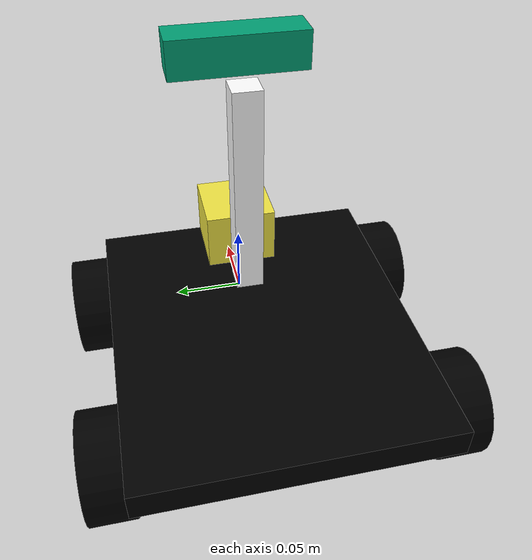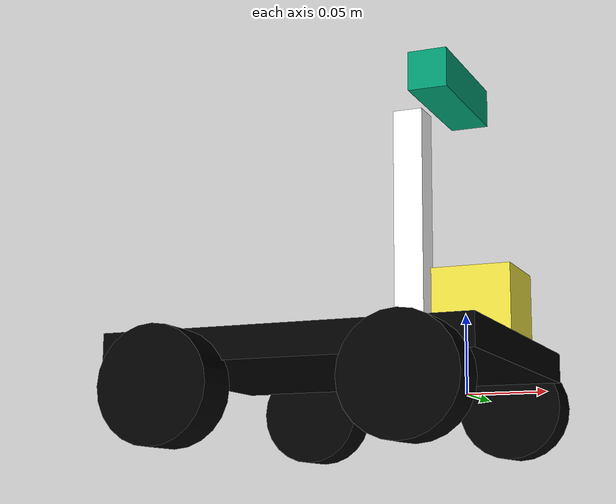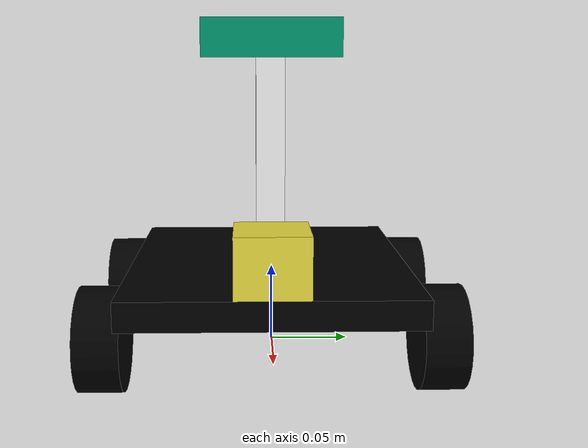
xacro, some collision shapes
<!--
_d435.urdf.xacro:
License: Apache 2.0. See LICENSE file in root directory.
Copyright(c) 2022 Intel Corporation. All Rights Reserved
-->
<?xml version="1.0"?>
<!-- Traxter Robot -->
    <robot name="traxter" xmlns:xacro="http://www.ros.org/wiki/xacro" canonical_link='base_link'>
<!-- CONSTANTS -->

    <!-- Constants for robot dimensions -->
    <xacro:property name="PI" value="3.1415926535897931" />
    <xacro:property name="wheel_base" value="0.225" />
    <xacro:property name="wheel_longitudinal_dist" value="0.15" /> <!-- Distance between rear and front wheels in x-direction-->
    <xacro:property name="camera_height" value="0.15" />
    <xacro:property name="scanner_height" value="0.05315" />
     <xacro:property name="imu_height" value="0.033" />

    <!-- Chassis Constants -->
    <xacro:property name="chassis_mass" value="1.5" />
    <xacro:property name="chassis_width" value="0.202" />
    <xacro:property name="chassis_length" value="0.235" />
    <xacro:property name="chassis_height" value="0.02" />
    <!-- Wheels Constants -->
    <xacro:property name="wheel_mass" value="1" />
    <xacro:property name="wheel_width" value="0.03" />
    <xacro:property name="wheel_radius" value="0.0355" />

<!-- INCLUDES-->
    <xacro:include filename="colours.xacro" /> <!-- rviz colours-->
    <xacro:include filename="inertial_macros.xacro" /> <!-- basic inertia math-->
    <xacro:include filename="$(find traxter_description)/urdf/_d435.urdf.xacro" />

  <!-- FOR REALSENSE DESCRIPTION -->
  <xacro:arg name="use_nominal_extrinsics" default="true"/>
  <xacro:arg name="add_plug" default="false" />
  <xacro:arg name="use_mesh" default="true" />

<!-- LINKS and JOINTS -->

    <link name="base_link"></link>

    <joint name="base_footprint_joint" type="fixed">
        <parent link="base_link"/>
        <child link="base_footprint"/>
        <origin xyz="0 0 -${wheel_radius}"/>
    </joint>

    <link name="base_footprint"></link>

    <!-- CHASSIS -->
    <joint name="chassis_joint" type="fixed">
        <parent link="base_link"/>
        <child link="chassis"/>
        <origin xyz="-${chassis_length * 0.5 - wheel_radius} 0 ${wheel_radius - chassis_height* 0.5}"/>
    </joint>

    <link name="chassis">
        <visual>
            <origin xyz="0 0 0" rpy="0 0 0"/>
            <geometry>
                    <box size="${chassis_length} ${chassis_width} ${chassis_height}"/>
            </geometry>
            <material name="black"/>
        </visual>
        <collision>
            <origin xyz="0 0 0" rpy="0 0 0"/>
            <geometry>
                <box size="${chassis_length} ${chassis_width} ${chassis_height}"/>
            </geometry>
        </collision>
        <xacro:inertial_box mass="${chassis_mass}" x="${chassis_length}" y="${chassis_width}" z="${chassis_height}">
            <origin xyz="0 0 0" rpy="0 0 0"/>
        </xacro:inertial_box>
    </link>

    <!-- WHEELS -->
    <joint name="front_left_wheel_joint" type="revolute">
        <parent link="chassis"/>
        <child link="front_left_wheel"/>
        <origin xyz="${chassis_length* 0.5 - wheel_radius} ${wheel_base* 0.5} ${-wheel_radius + chassis_height* 0.5}" rpy="0 0 0"/>
        <axis xyz="0 1 0"/>
        <limit lower="-1e16" upper="1e16" effort="100000.0" velocity="23"/>
        <dynamics damping="0.1"/>
    </joint>

    <link name="front_left_wheel">
        <visual>
            <origin xyz="0 0 0" rpy="${PI* 0.5} 0 0"/>
            <geometry>
                    <cylinder radius="${wheel_radius}" length="${wheel_width}"/>
            </geometry>
            <material name="black"/>
        </visual>
        <collision>
            <origin xyz="0 0 0" rpy="${PI* 0.5} 0 0"/>
            <geometry>
                <cylinder radius="${wheel_radius}" length="${wheel_width}"/>
            </geometry>
            <surface>
                <contact>
                    <ode>
                        <kp>100.0</kp>
                        <kd>1.0</kd>
                    </ode>
                </contact>
            <friction>
                    <ode>
                        <mu>10</mu>
                        <mu2>1</mu2>
                        <slip1>0.01</slip1>
                        <slip2>0.2</slip2>
                        <fdir1>0 0 1</fdir1>
                    </ode>
                </friction>
            </surface>
        </collision>
        <xacro:inertial_cylinder mass="${wheel_mass}" length="${wheel_width}" radius="${wheel_radius}">
            <origin xyz="0 0 0" rpy="0 0 0"/>
        </xacro:inertial_cylinder>
    </link>

    <joint name="front_right_wheel_joint" type="revolute">
        <parent link="chassis"/>
        <child link="front_right_wheel"/>
        <origin xyz="${chassis_length* 0.5 - wheel_radius} ${-wheel_base* 0.5} ${-wheel_radius + chassis_height* 0.5}" rpy="0 0 0"/>
        <axis xyz="0 1 0"/>
        <limit lower="-1e16" upper="1e16" effort="100000.0" velocity="23"/>
        <dynamics damping="0.1"/>
    </joint>

    <link name="front_right_wheel">
        <visual>
            <origin xyz="0 0 0" rpy="${PI* 0.5} 0 0"/>
            <geometry>
                    <cylinder radius="${wheel_radius}" length="${wheel_width}"/>
            </geometry>
            <material name="black"/>
        </visual>
        <collision>
            <origin xyz="0 0 0" rpy="${PI* 0.5} 0 0"/>
            <geometry>
                <cylinder radius="${wheel_radius}" length="${wheel_width}"/>
            </geometry>
            <surface>
                <contact>
                    <ode>
                        <kp>100.0</kp>
                        <kd>1.0</kd>
                    </ode>
                </contact>
            <friction>
                    <ode>
                        <mu>10</mu>
                        <mu2>1</mu2>
                        <slip1>0.01</slip1>
                        <slip2>0.2</slip2>
                        <fdir1>0 0 1</fdir1>

                    </ode>
                </friction>
            </surface>
        </collision>
        <xacro:inertial_cylinder mass="${wheel_mass}" length="${wheel_width}" radius="${wheel_radius}">
            <origin xyz="0 0 0" rpy="0 0 0"/>
        </xacro:inertial_cylinder>
    </link>

    <joint name="rear_left_wheel_joint" type="revolute">
        <parent link="chassis"/>
        <child link="rear_left_wheel"/>
        <origin xyz="${chassis_length* 0.5 - wheel_radius-wheel_longitudinal_dist} ${wheel_base* 0.5} ${-wheel_radius + chassis_height* 0.5}" rpy="0 0 0"/>
        <axis xyz="0 1 0"/>
        <limit lower="-1e16" upper="1e16" effort="100000.0" velocity="23"/>
        <dynamics damping="0.1"/>
    </joint>

    <link name="rear_left_wheel">
        <visual>
            <origin xyz="0 0 0" rpy="${PI* 0.5} 0 0"/>
            <geometry>
                    <cylinder radius="${wheel_radius}" length="${wheel_width}"/>
            </geometry>
            <material name="black"/>
        </visual>
        <collision>
            <origin xyz="0 0 0" rpy="${PI* 0.5} 0 0"/>
            <geometry>
                <cylinder radius="${wheel_radius}" length="${wheel_width}"/>
            </geometry>
            <surface>
                <contact>
                    <ode>
                        <kp>100.0</kp>
                        <kd>1.0</kd>
                    </ode>
                </contact>
            <friction>
                    <ode>
                        <mu>10</mu>
                        <mu2>1</mu2>
                        <slip1>0.01</slip1>
                        <slip2>0.2</slip2>
                        <fdir1>0 0 1</fdir1>

                    </ode>
                </friction>
            </surface>
        </collision>
        <xacro:inertial_cylinder mass="${wheel_mass}" length="${wheel_width}" radius="${wheel_radius}">
            <origin xyz="0 0 0" rpy="0 0 0"/>
        </xacro:inertial_cylinder>
    </link>

    <joint name="rear_right_wheel_joint" type="revolute">
        <parent link="chassis"/>
        <child link="rear_right_wheel"/>
        <origin xyz="${chassis_length* 0.5 - wheel_radius-wheel_longitudinal_dist} ${-wheel_base* 0.5} ${-wheel_radius + chassis_height* 0.5}" rpy="0 0 0"/>
        <axis xyz="0 1 0"/>
        <limit lower="-1e16" upper="1e16" effort="100000.0" velocity="23"/>
        <dynamics damping="0.1"/>
    </joint>

    <link name="rear_right_wheel">
        <visual>
            <origin xyz="0 0 0" rpy="${PI* 0.5} 0 0"/>
            <geometry>
                    <cylinder radius="${wheel_radius}" length="${wheel_width}"/>
            </geometry>
            <material name="black"/>
        </visual>
        <collision>
            <origin xyz="0 0 0" rpy="${PI* 0.5} 0 0"/>
            <geometry>
                <cylinder radius="${wheel_radius}" length="${wheel_width}"/>
            </geometry>
            <surface>
                <contact>
                    <ode>
                        <kp>100.0</kp>
                        <kd>1.0</kd>
                    </ode>
                </contact>
            <friction>
                    <ode>
                        <mu>10</mu>
                        <mu2>1</mu2>
                        <slip1>0.01</slip1>
                        <slip2>0.2</slip2>
                        <fdir1>0 0 1</fdir1>

                    </ode>
                </friction>
            </surface>
        </collision>
        <xacro:inertial_cylinder mass="${wheel_mass}" length="${wheel_width}" radius="${wheel_radius}">
            <origin xyz="0 0 0" rpy="0 0 0"/>
        </xacro:inertial_cylinder>
    </link>

    <!-- CAMERA SUPPORT-->
    <joint name="camera_support_joint" type="fixed">
        <parent link="chassis"/>
        <child link="camera_support"/>
        <origin xyz="${chassis_length* 0.5-0.07} 0 ${(chassis_height+camera_height)* 0.5}" rpy="0 0 0"/>
    </joint>

    <link name="camera_support">
        <visual>
            <origin xyz="0 0 0" rpy="0 0 0"/>
            <geometry>
                    <box size="0.0195 0.0195 ${camera_height}"/>
            </geometry>
            <material name="white"/>
        </visual>
        <collision>
            <origin xyz="0 0 0" rpy="0 0 0"/>
            <geometry>
                <box size="0.0195 0.0195 ${camera_height}"/>
            </geometry>
        </collision>
        <xacro:inertial_box mass="0.3" x="0.02" y="0.02" z="${camera_height}">
            <origin xyz="0 0 0" rpy="0 0 0"/>
        </xacro:inertial_box>
    </link>

    <!-- D435 Intel RealSense -->
    <joint name="d435_joint" type="fixed">
        <parent link="camera_support"/>
        <child link="d435_link"/>
        <origin xyz="0.015 0 ${camera_height* 0.5}" rpy="0 0 0"/>
    </joint>

    <link name="d435_link">
    </link>

    <xacro:sensor_d435 parent="d435_link" use_nominal_extrinsics="$(arg use_nominal_extrinsics)" add_plug="$(arg add_plug)" use_mesh="$(arg use_mesh)">
        <origin xyz="0 0 0" rpy="0 0 0"/>
    </xacro:sensor_d435>

    <!-- HOKUYO LIDAR -->
    <joint name="lidar_joint" type="fixed">
        <parent link="chassis"/>
        <child link="hokuyo"/>
        <origin xyz="${chassis_length* 0.5-0.025} 0 ${chassis_height* 0.5+scanner_height}" rpy="0 0 0"/>
    </joint>

    <link name="hokuyo"> <!-- Values based and taken from https://fuel.gazebosim.org/1.0/mjcarroll/models/Hokuyo URG04LX -->
        <inertial>
          <mass value="0.13"/>
          <inertia ixx ="8.018737945431742e-05" ixy="0" ixz="0"
            iyy="8.018737945431742e-05" iyz="0"
            izz="5.418967911032867e-05"/>
        </inertial>
        <collision name="collision-base">
            <origin xyz="0 0 ${-scanner_height+0.041* 0.5}" rpy="0 0 0"/>
            <geometry>
              <box size="0.05 0.05 0.041"/>
            </geometry>
          </collision>
          <collision name="collision-top">
            <origin xyz="0 0 ${-scanner_height+0.041+0.0265* 0.5}" rpy="0 0 0"/>
            <geometry>
              <cylinder radius="0.021" length="0.0265"/>
            </geometry>
          </collision>
        <visual>
        <origin xyz="0 0 ${-scanner_height+0.035}" rpy="0 0 0 "/>
            <geometry>
                <mesh filename="package://traxter_description/meshes/hokuyo.dae" scale="1 1 1"/> <!-- taken form https://app.gazebosim.org/OpenRobotics/fuel/models/Hokuyo -->
            </geometry>
        </visual>
    </link>

    <!-- MPU9255 IMU -->
        <joint name="imu_joint" type="fixed">
            <parent link="chassis"/>
            <child link="imu_link"/>
            <origin xyz="${chassis_length* 0.5-0.12} 0 ${chassis_height* 0.5+imu_height}" rpy="0 0 0"/>
        </joint>

        <link name="imu_link"></link>

        <!-- Depth Camera -->
    <gazebo reference="d435_link"> <!-- values taken from https://fuel.gazebosim.org/1.0/OpenRobotics/models/Intel RealSense D435 -->
        <sensor name="rgbd_camera" type="rgbd_camera">
        <pose>0.02 0 0 0 0 0</pose>
            <always_on>1</always_on>
            <update_rate>15</update_rate>
            <camera name="camera">
              <horizontal_fov>1.0472</horizontal_fov>
              <lens>
                <intrinsics>
                  <!-- fx = fy = width / ( 2 * tan (hfov / 2 ) ) -->
                  <fx>554.25469</fx>
                  <fy>554.25469</fy>
                  <!-- cx = ( width + 1 ) / 2 -->
                  <cx>320.5</cx>
                  <!-- cy = ( height + 1 ) / 2 -->
                  <cy>240.5</cy>
                  <s>0</s>
                </intrinsics>
              </lens>
              <distortion>
                <k1>0.0</k1>
                <k2>0.0</k2>
                <k3>0.0</k3>
                <p1>0.0</p1>
                <p2>0.0</p2>
                <center>0.5 0.5</center>
              </distortion>
              <image>
                <width>640</width>
                <height>480</height>
                <format>R8G8B8</format>
              </image>
              <clip>
                <near>0.01</near>
                <far>300</far>
              </clip>
              <depth_camera>
                <clip>
                  <near>0.1</near>
                  <far>20</far>
                </clip>
                <format>R8G8B8</format>
              </depth_camera>
              <noise>
                <type>gaussian</type>
                <mean>0</mean>
                <stddev>0.007</stddev>
              </noise>
            </camera>
          </sensor>
    </gazebo>

        <gazebo>
            <plugin filename="libignition-gazebo-odometry-publisher-system.so"
                name="ignition::gazebo::systems::OdometryPublisher">
                <odom_frame>map</odom_frame>
                <robot_base_frame>base_link</robot_base_frame>
                <odom_topic>odometry/true</odom_topic>
            </plugin>
        </gazebo>

        <gazebo>
            <plugin filename="libignition-gazebo-joint-controller-system.so"
                name="ignition::gazebo::systems::JointController">
                <joint_name>front_right_wheel_joint</joint_name>
                <topic>/front_right_wheel/cmd_vel</topic>
                <initial_velocity>0</initial_velocity>
            </plugin>
        </gazebo>
        <gazebo>
            <plugin filename="libignition-gazebo-joint-controller-system.so"
                name="ignition::gazebo::systems::JointController">
                <joint_name>rear_right_wheel_joint</joint_name>
                <topic>/front_right_wheel/cmd_vel</topic>
                <initial_velocity>0</initial_velocity>
            </plugin>
        </gazebo>

        <gazebo>
            <plugin filename="libignition-gazebo-joint-controller-system.so"
                name="ignition::gazebo::systems::JointController">
                <joint_name>front_left_wheel_joint</joint_name>
                <topic>/front_left_wheel/cmd_vel</topic>
                <initial_velocity>0</initial_velocity>
            </plugin>
        </gazebo>

        <gazebo>
            <plugin filename="libignition-gazebo-joint-controller-system.so"
                name="ignition::gazebo::systems::JointController">
                <joint_name>rear_left_wheel_joint</joint_name>
                <topic>/front_left_wheel/cmd_vel</topic>
                <initial_velocity>0</initial_velocity>
            </plugin>
        </gazebo>

        <gazebo>
            <plugin name='ignition::gazebo::systems::JointStatePublisher' filename='libignition-gazebo-joint-state-publisher-system.so'>
                <joint_name>front_left_wheel_joint</joint_name>
                <joint_name>front_right_wheel_joint</joint_name>
                <joint_name>rear_left_wheel_joint</joint_name>
                <joint_name>rear_right_wheel_joint</joint_name>
            </plugin>
        </gazebo>

        <!-- GPU LiDAR -->
        <gazebo reference="hokuyo">
            <sensor name="hokuyo" type='gpu_lidar'>"
                <topic>lidar</topic>
                <update_rate>10</update_rate>
                <ray>
                    <scan>
                        <horizontal>
                            <samples>683</samples>
                            <resolution>1</resolution>
                            <min_angle>-2.09235</min_angle>
                            <max_angle>2.09235</max_angle>
                        </horizontal>
                        <vertical>
                            <samples>1</samples>
                            <resolution>0.01</resolution>
                            <min_angle>0</min_angle>
                            <max_angle>0</max_angle>
                        </vertical>
                    </scan>
                    <range>
                        <min>0.060</min>
                        <max>5.6</max>
                           <resolution>0.001</resolution>
                    </range>
                    <noise>
                        <type>gaussian</type>
                        <mean>0.0</mean>
                        <stddev>0.015</stddev>
                    </noise>
                </ray>
                <always_on>1</always_on>
                <update_rate>10</update_rate>
                <visualize>true</visualize>
            </sensor>
    </gazebo>

    <!-- IMU -->
    <gazebo reference="imu_link">
        <sensor name="imu_link" type="imu">
        <topic>imu</topic>
            <imu>
              <angular_velocity>
                <x>
                  <noise type="gaussian">
                    <mean>0.001</mean>
                    <stddev>4e-2</stddev>
                    <bias_mean>0.000075</bias_mean>
                    <bias_stddev>0.000008</bias_stddev>
                  </noise>
                </x>
                <y>
                  <noise type="gaussian">
                    <mean>0.002</mean>
                    <stddev>3e-3</stddev>
                    <bias_mean>0.0000095</bias_mean>
                    <bias_stddev>0.0000012</bias_stddev>
                  </noise>
                </y>
                <z>
                  <noise type="gaussian">
                    <mean>0.002</mean>
                    <stddev>1e-1</stddev>
                    <bias_mean>-0.0001</bias_mean>
                    <bias_stddev>0.008</bias_stddev>
                  </noise>
                </z>
              </angular_velocity>
              <linear_acceleration>
                <x>
                  <noise type="gaussian">
                    <mean>0.00012</mean>
                    <stddev>3.7e-2</stddev>
                    <bias_mean>0.001</bias_mean>
                    <bias_stddev>0.001</bias_stddev>
                  </noise>
                </x>
                <y>
                  <noise type="gaussian">
                    <mean>0.00015</mean>
                    <stddev>3.7e-2</stddev>
                    <bias_mean>0.001</bias_mean>
                    <bias_stddev>0.001</bias_stddev>
                  </noise>
                </y>
                <z>
                  <noise type="gaussian">
                    <mean>0.00012</mean>
                    <stddev>1.7e-2</stddev>
                    <bias_mean>0.001</bias_mean>
                    <bias_stddev>0.001</bias_stddev>
                  </noise>
                </z>
              </linear_acceleration>
            </imu>
            <always_on>1</always_on>
            <update_rate>50</update_rate>
          </sensor>

    </gazebo>

</robot>

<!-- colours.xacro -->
<robot xmlns:xacro="http://www.ros.org/wiki/xacro">

	<material name="white">
    		<color rgba="1 1 1 1"/>
	</material>

	<material name="orange">
    		<color rgba="1 0.3 0.1 1"/>
	</material>

	<material name="blue">
    		<color rgba="0.2 0.2 1 1"/>
	</material>

	<material name="black">
    		<color rgba="0 0 0 1"/>
	</material>

	<material name="magenta_tint">
    		<color rgba="0.6 0.5 0.5 1"/>
	</material>

</robot>

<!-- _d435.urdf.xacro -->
<robot name="sensor_d435" xmlns:xacro="http://ros.org/wiki/xacro">
  <!-- Includes -->
  <xacro:include filename="$(find traxter_description)/urdf/_materials.urdf.xacro" />
  <xacro:include filename="$(find traxter_description)/urdf/_usb_plug.urdf.xacro" />

  <xacro:macro name="sensor_d435" params="parent *origin name:=camera use_nominal_extrinsics:=false add_plug:=false use_mesh:=true">
    <xacro:property name="M_PI" value="3.1415926535897931" />

    <!-- The following values are approximate, and the camera node
     publishing TF values with actual calibrated camera extrinsic values -->
    <xacro:property name="d435_cam_depth_to_infra1_offset" value="0.0"/>
    <xacro:property name="d435_cam_depth_to_infra2_offset" value="-0.050"/>
    <xacro:property name="d435_cam_depth_to_color_offset" value="0.015"/>

    <!-- The following values model the aluminum peripherial case for the
  	D435 camera, with the camera joint represented by the actual
  	peripherial camera tripod mount -->
    <xacro:property name="d435_cam_width" value="0.090"/>
    <xacro:property name="d435_cam_height" value="0.025"/>
    <xacro:property name="d435_cam_depth" value="0.02505"/>
    <xacro:property name="d435_cam_mount_from_center_offset" value="0.0149"/>
    <!-- glass cover is 0.1 mm inwards from front aluminium plate -->
    <xacro:property name="d435_glass_to_front" value="0.1e-3"/>
    <!-- see datasheet Revision 007, Fig. 4-4 page 65 -->
    <xacro:property name="d435_zero_depth_to_glass" value="4.2e-3"/>
    <!-- convenience precomputation to avoid clutter-->
    <xacro:property name="d435_mesh_x_offset" value="${d435_cam_mount_from_center_offset-d435_glass_to_front-d435_zero_depth_to_glass}"/>

    <!-- The following offset is relative the the physical D435 camera peripherial
  	camera tripod mount -->
    <xacro:property name="d435_cam_depth_px" value="${d435_cam_mount_from_center_offset}"/>
    <xacro:property name="d435_cam_depth_py" value="0.0175"/>
    <xacro:property name="d435_cam_depth_pz" value="${d435_cam_height/2}"/>

    <!-- camera body, with origin at bottom screw mount -->
    <joint name="${name}_joint" type="fixed">
      <xacro:insert_block name="origin" />
      <parent link="${parent}"/>
      <child link="${name}_bottom_screw_frame" />
    </joint>
    <link name="${name}_bottom_screw_frame"/>

    <joint name="${name}_link_joint" type="fixed">
      <origin xyz="${d435_mesh_x_offset} ${d435_cam_depth_py} ${d435_cam_depth_pz}" rpy="0 0 0"/>
      <parent link="${name}_bottom_screw_frame"/>
      <child link="${name}_link" />
    </joint>

    <link name="${name}_link">
      <visual>
        <xacro:if value="${use_mesh}">
          <!-- the mesh origin is at front plate in between the two infrared camera axes -->
          <origin xyz="${d435_zero_depth_to_glass + d435_glass_to_front} ${-d435_cam_depth_py} 0" rpy="${M_PI/2} 0 ${M_PI/2}"/>
          <geometry>
            <mesh filename="package://traxter_description/meshes/d435.dae" />
          </geometry>
        </xacro:if>
        <xacro:unless value="${use_mesh}">
          <origin xyz="0 ${-d435_cam_depth_py} 0" rpy="0 0 0"/>
          <geometry>
            <box size="${d435_cam_depth} ${d435_cam_width} ${d435_cam_height}"/>
          </geometry>
          <material name="aluminum"/>
        </xacro:unless>
      </visual>
      <collision>
        <origin xyz="0 ${-d435_cam_depth_py} 0" rpy="0 0 0"/>
        <geometry>
          <box size="${d435_cam_depth} ${d435_cam_width} ${d435_cam_height}"/>
        </geometry>
      </collision>
      <inertial>
        <!-- The following are not reliable values, and should not be used for modeling -->
        <mass value="0.072" />
        <origin xyz="0 0 0" />
        <inertia ixx="0.003881243" ixy="0.0" ixz="0.0" iyy="0.000498940" iyz="0.0" izz="0.003879257" />
      </inertial>
    </link>

    <!-- Use the nominal extrinsics between camera frames if the calibrated extrinsics aren't being published. e.g. running the device in simulation  -->
    <xacro:if value="${use_nominal_extrinsics}">
      <!-- camera depth joints and links -->
      <joint name="${name}_depth_joint" type="fixed">
        <origin xyz="0 0 0" rpy="0 0 0"/>
        <parent link="${name}_link"/>
        <child link="${name}_depth_frame" />
      </joint>
      <link name="${name}_depth_frame"/>

      <joint name="${name}_depth_optical_joint" type="fixed">
        <origin xyz="0 0 0" rpy="${-M_PI/2} 0 ${-M_PI/2}" />
        <parent link="${name}_depth_frame" />
        <child link="${name}_depth_optical_frame" />
      </joint>
      <link name="${name}_depth_optical_frame"/>

      <!-- camera left IR joints and links -->
      <joint name="${name}_infra1_joint" type="fixed">
        <origin xyz="0 ${d435_cam_depth_to_infra1_offset} 0" rpy="0 0 0" />
        <parent link="${name}_link" />
        <child link="${name}_infra1_frame" />
      </joint>
      <link name="${name}_infra1_frame"/>

      <joint name="${name}_infra1_optical_joint" type="fixed">
        <origin xyz="0 0 0" rpy="${-M_PI/2} 0 ${-M_PI/2}" />
        <parent link="${name}_infra1_frame" />
        <child link="${name}_infra1_optical_frame" />
      </joint>
      <link name="${name}_infra1_optical_frame"/>

      <!-- camera right IR joints and links -->
      <joint name="${name}_infra2_joint" type="fixed">
        <origin xyz="0 ${d435_cam_depth_to_infra2_offset} 0" rpy="0 0 0" />
        <parent link="${name}_link" />
        <child link="${name}_infra2_frame" />
      </joint>
      <link name="${name}_infra2_frame"/>

      <joint name="${name}_infra2_optical_joint" type="fixed">
        <origin xyz="0 0 0" rpy="${-M_PI/2} 0 ${-M_PI/2}" />
        <parent link="${name}_infra2_frame" />
        <child link="${name}_infra2_optical_frame" />
      </joint>
      <link name="${name}_infra2_optical_frame"/>

      <!-- camera color joints and links -->
      <joint name="${name}_color_joint" type="fixed">
        <origin xyz="0 ${d435_cam_depth_to_color_offset} 0" rpy="0 0 0" />
        <parent link="${name}_link" />
        <child link="${name}_color_frame" />
      </joint>
      <link name="${name}_color_frame"/>

      <joint name="${name}_color_optical_joint" type="fixed">
        <origin xyz="0 0 0" rpy="${-M_PI/2} 0 ${-M_PI/2}" />
        <parent link="${name}_color_frame" />
        <child link="${name}_color_optical_frame" />
      </joint>
      <link name="${name}_color_optical_frame"/>
    </xacro:if>

    <xacro:if value="${add_plug}">
      <xacro:usb_plug parent="${name}_link" name="${name}_usb_plug">
        <origin xyz="${d435_cam_mount_from_center_offset - 0.02095} ${-d435_cam_depth_py - 0.0353} 0" rpy="0 0 0"/>
      </xacro:usb_plug>
    </xacro:if>
  </xacro:macro>
</robot>
